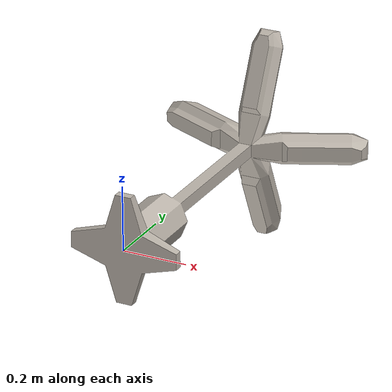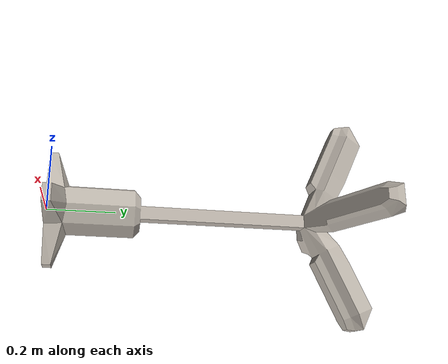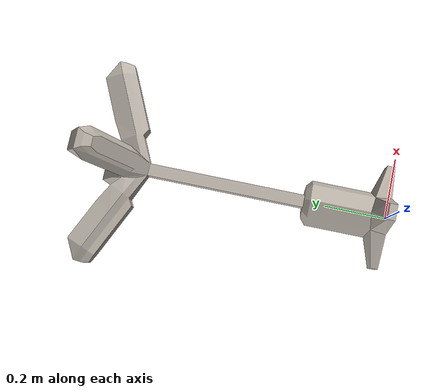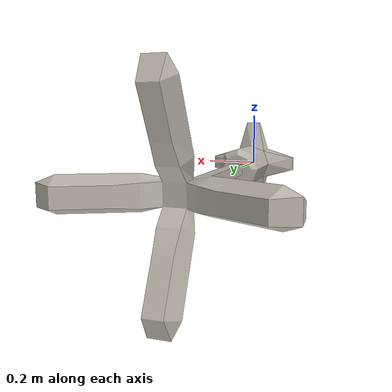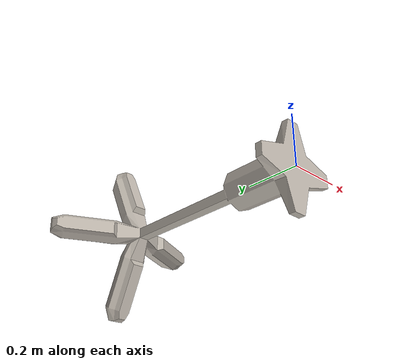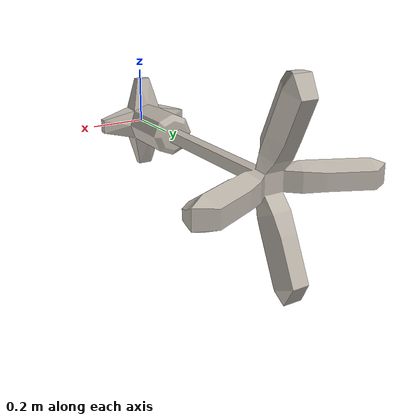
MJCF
<mujoco model="lights">
  <default>
    <default class="visual">
      <geom group="2" type="mesh" contype="0" conaffinity="0" />
    </default>
    <default class="collision">
      <geom group="3" type="mesh" />
    </default>
  </default>
  <asset>
    <texture type="2d" name="lights_spacebits_texture" file="spacebits_texture.png" />
    <material name="lights_spacebits_texture" texture="lights_spacebits_texture" specular="0.5" shininess="0.15999998099999999" />
    <mesh file="lights.obj" name="lights_lights" />
  </asset>
  <worldbody>
    <body name="lights">
      <geom material="lights_spacebits_texture" mesh="lights_lights" class="visual" />
      <geom mesh="lights_lights" class="collision" />
    </body>
  </worldbody>
</mujoco>
